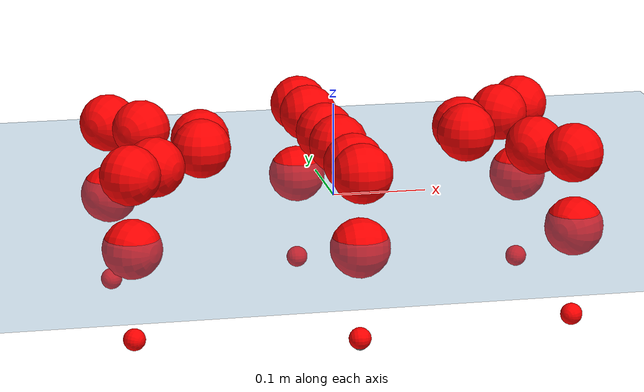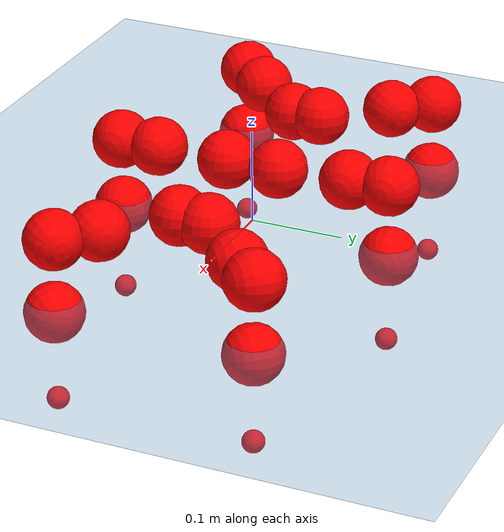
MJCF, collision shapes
<mujoco model="Golem">
  <compiler angle="radian" assetdir="assets" balanceinertia="true" inertiafromgeom="false"/>

  <option timestep="0.005" density="1.2" viscosity="2e-05"/>

  <size nkey="1"/>

  <visual>
    <quality shadowsize="8192"/>
    <map shadowclip="0.5"/>
  </visual>

  <default>
    <default class="/">
      <joint armature="0.01" damping="0.01" frictionloss="0.01"/>
      <geom contype="0" conaffinity="0" group="1" solref="-1000 -80"/>
      <site size="0.01 0.005 0.005" group="5"/>
      <general forcelimited="true" biastype="affine" gainprm="25" biasprm="0 -25 -0.5"/>
      <default class="visual">
        <geom type="mesh" group="2"/>
      </default>
      <default class="collision">
        <geom group="3"/>
      </default>
      <default class="foot">
        <geom size="0.01 0 0" condim="6" group="4" priority="1" solimp="0.015 1 0.01"/>
      </default>
      <default class="reward_collision_sphere">
        <geom group="5" rgba="1 0 0 1"/>
      </default>
    </default>
  </default>

  <asset>
    <texture type="skybox" colorspace="auto" name="//unnamed_texture_0" builtin="gradient" rgb1="0.95 0.95 0.95" rgb2="0.95 0.95 0.95" width="100" height="600"/>
    <texture type="2d" colorspace="auto" name="texplane" builtin="checker" rgb1="0.345 0.575 0.748" rgb2="0.345 0.575 0.748" markrgb="1 1 1" width="512" height="512"/>
    <material name="MatPlane" class="/" texture="texplane" texuniform="true" texrepeat="2 2" specular="0.9"/>
    <mesh name="body" class="/" file="body.stl" scale="0.001 0.001 0.001"/>
    <mesh name="coxa" class="/" file="coxa.stl" scale="0.001 0.001 0.001"/>
    <mesh name="femur" class="/" file="femur.stl" scale="0.001 0.001 0.001"/>
    <mesh name="tibia" class="/" file="tibia.stl" scale="0.001 0.001 0.001"/>
    <mesh name="tarsus" class="/" file="tarsus.stl" scale="0.001 0.001 0.001"/>
  </asset>

  <worldbody>
    <geom name="floor" class="/" size="100 100 0.125" type="plane" group="0" material="MatPlane"/>
    <light name="toplight_shadow" class="/" pos="0 0 5" dir="0.0990148 0.0990148 -0.990148" type="directional" ambient="0.04 0.04 0.04" diffuse="0.55 0.55 0.55" specular="0.12 0.12 0.12"/>
    <light name="toplight_fill" class="/" pos="0 0 5" dir="0.0990148 0.0990148 -0.990148" type="directional" castshadow="false" ambient="0.04 0.04 0.04" diffuse="0.3 0.3 0.3" specular="0.08 0.08 0.08"/>
    <body name="trunk" pos="5.4585e-05 -0.000109373 -0.000953869" quat="0.999999 -0.0012101 -0.000312 2.6755e-05">
      <inertial pos="-0.000761549 -0.000651252 -0.00326022" quat="1 -0.000582958 -0.000215526 0.000417163" mass="1.76677" diaginertia="0.00586232 0.000118101 0.0102443"/>
      <joint name="//unnamed_joint_0" type="free"/>
      <geom name="//unnamed_geom_1" class="/" pos="0 0 0.0644132" quat="1 0 0 0" type="mesh" rgba="0.9 0.9 0.9 1" mesh="body"/>
      <site name="imu" class="/" pos="0.128942 -0.00166897 0.0989723" size="0.00772839"/>
      <camera name="track" class="/" pos="0 -0.824618 0" quat="0.707107 0.707107 0 0" mode="trackcom"/>
      <camera name="ego_camera" class="/" pos="0.116968 0 0.100646" quat="-0.5 -0.5 0.5 0.5"/>
      <body name="coxa_RR" pos="-0.161466 -0.033475 0.0637441" quat="0.382457 0.000985021 0.000767521 -0.923972">
        <inertial pos="0.000247238 -4.58863e-05 0.00212773" quat="0.999992 0.00218502 0.00312357 0.00101529" mass="0.0951871" diaginertia="0.00601024 0.000121597 0.0105014"/>
        <joint name="coxa_joint_RR" class="/" pos="0 0 0" axis="0.00442917 -0.00317918 -0.999985" range="-3.16989 3.09304" armature="0.00769285" damping="0.00255973" frictionloss="0.00788705"/>
        <geom name="//unnamed_geom_2" class="/" type="mesh" rgba="0.2 0.2 0.2 1" mesh="coxa"/>
        <geom name="//unnamed_geom_3" class="reward_collision_sphere" size="0.0309136" pos="-0.0269926 0 0"/>
        <body name="femur_RR" pos="0.0552204 0.00197389 -0.000593934" quat="0.500275 -0.499878 0.500088 0.499758">
          <inertial pos="-0.000361333 -0.000365785 0.00103089" quat="0.999997 -0.00136906 -0.000913208 -0.00202215" mass="0.092881" diaginertia="0.00587107 0.000119114 0.0104547"/>
          <joint name="femur_joint_RR" class="/" pos="0 0 0" axis="0.000228506 6.90757e-06 -1" range="-3.09497 3.14552" armature="0.00693098" damping="0" frictionloss="0.00812488"/>
          <geom name="//unnamed_geom_4" class="/" type="mesh" rgba="0.9 0.9 0.9 1" mesh="femur"/>
          <geom name="//unnamed_geom_5" class="reward_collision_sphere" size="0.0309136"/>
          <body name="tibia_RR" pos="-0.00191565 -0.0429906 0.00188591" quat="-0.000470632 1 -5.44526e-05 -0.000287757">
            <inertial pos="0.00168902 0.000809289 0.000351437" quat="0.999997 0.000714633 -0.000374062 -0.00230949" mass="0.0941971" diaginertia="0.00596363 0.000119074 0.0100717"/>
            <joint name="tibia_joint_RR" class="/" pos="0 0 0" axis="0.00977616 0.00465538 0.999941" range="-3.09299 3.14649" armature="0.00710502" damping="0" frictionloss="0.00786221"/>
            <geom name="//unnamed_geom_6" class="/" type="mesh" rgba="0.2 0.2 0.2 1" mesh="tibia"/>
            <geom name="//unnamed_geom_7" class="reward_collision_sphere" size="0.0309136"/>
            <body name="tarsus_RR" pos="0.0767351 0.00100762 -0.0015425" quat="1 -0.000242699 -0.000235512 -0.000129071">
              <inertial pos="0.0543251 0.000921903 -0.000909746" quat="0.499147 0.499959 0.50055 0.500343" mass="0.0925901" diaginertia="0.00589272 0.000118822 0.0104132"/>
              <joint name="tarsus_joint_RR" class="/" pos="0 0 0" axis="-0.00608657 -0.00321446 0.999976" range="-3.13164 3.14318" armature="0.00819658" damping="0" frictionloss="0.00749821"/>
              <geom name="//unnamed_geom_8" class="/" type="mesh" rgba="0.9 0.9 0.9 1" mesh="tarsus"/>
              <geom name="foot_1" class="foot" size="0.00735813" pos="0.100772 0 0" quat="0 -0.707107 0 0.707107"/>
              <geom name="//unnamed_geom_10" class="reward_collision_sphere" size="0.0309136"/>
              <geom name="//unnamed_geom_11" class="reward_collision_sphere" size="0.0115926" pos="0.0967233 0 0"/>
              <site name="foot_1" class="foot" pos="0.100772 0 0" quat="0 -0.707107 0 0.707107" size="0.00772839"/>
            </body>
          </body>
        </body>
      </body>
      <body name="coxa_RM" pos="-0.000151377 -0.0554614 0.0649599" quat="0.707627 -0.000816003 -1.69111e-05 -0.706586">
        <inertial pos="0.000200638 -0.00194191 0.000637702" quat="0.999997 -5.16025e-05 0.00204837 -0.00133895" mass="0.091145" diaginertia="0.00579761 0.000119942 0.0104397"/>
        <joint name="coxa_joint_RM" class="/" pos="0 0 0" axis="0.00939646 0.00687069 -0.999932" range="-3.13967 3.17349" armature="0.0086639" damping="0" frictionloss="0.00728349"/>
        <geom name="//unnamed_geom_12" class="/" type="mesh" rgba="0.2 0.2 0.2 1" mesh="coxa"/>
        <geom name="//unnamed_geom_13" class="reward_collision_sphere" size="0.0309136" pos="-0.0269926 0 0"/>
        <body name="femur_RM" pos="0.050826 0.000183865 0.000257828" quat="0.499748 -0.50005 0.500004 0.500197">
          <inertial pos="0.000661437 -0.00113426 0.000134032" quat="0.999989 0.00411883 -0.00214645 -0.000867905" mass="0.0932709" diaginertia="0.00581627 0.00012206 0.0105726"/>
          <joint name="femur_joint_RM" class="/" pos="0 0 0" axis="0.00249017 -0.00275924 -0.999993" range="-3.1359 3.13101" armature="0.00748025" damping="0.00480007" frictionloss="0.0080843"/>
          <geom name="//unnamed_geom_14" class="/" type="mesh" rgba="0.9 0.9 0.9 1" mesh="femur"/>
          <geom name="//unnamed_geom_15" class="reward_collision_sphere" size="0.0309136"/>
          <body name="tibia_RM" pos="-0.000568596 -0.0426188 0.000124666" quat="-2.2261e-05 1 -6.35243e-05 -1.45262e-05">
            <inertial pos="-0.000651471 -0.00159208 -0.00205622" quat="0.999955 -0.0015676 0.00762192 -0.00549938" mass="0.0919268" diaginertia="0.00607346 0.000120279 0.0105873"/>
            <joint name="tibia_joint_RM" class="/" pos="0 0 0" axis="-0.00051017 -0.000110491 1" range="-3.15168 3.14998" armature="0.00851019" damping="0.00106138" frictionloss="0.00867669"/>
            <geom name="//unnamed_geom_16" class="/" type="mesh" rgba="0.2 0.2 0.2 1" mesh="tibia"/>
            <geom name="//unnamed_geom_17" class="reward_collision_sphere" size="0.0309136"/>
            <body name="tarsus_RM" pos="0.0776028 0.000393858 0.00205127" quat="1 -5.3063e-05 -1.00253e-06 4.56871e-05">
              <inertial pos="0.0549991 0.00132792 0.000189031" quat="0.497551 0.501508 0.497762 0.503156" mass="0.0914454" diaginertia="0.00587494 0.000118179 0.0102177"/>
              <joint name="tarsus_joint_RM" class="/" pos="0 0 0" axis="-4.48722e-05 -0.000810801 1" range="-3.09267 3.13402" armature="0.0087267" damping="1.74981e-05" frictionloss="0.00793297"/>
              <geom name="//unnamed_geom_18" class="/" type="mesh" rgba="0.9 0.9 0.9 1" mesh="tarsus"/>
              <geom name="foot_2" class="foot" size="0.00842433" pos="0.100772 0 0" quat="0 -0.707107 0 0.707107"/>
              <geom name="//unnamed_geom_20" class="reward_collision_sphere" size="0.0309136"/>
              <geom name="//unnamed_geom_21" class="reward_collision_sphere" size="0.0115926" pos="0.0967233 0 0"/>
              <site name="foot_2" class="foot" pos="0.100772 0 0" quat="0 -0.707107 0 0.707107" size="0.00772839"/>
            </body>
          </body>
        </body>
      </body>
      <body name="coxa_RF" pos="0.159414 -0.034461 0.0663766" quat="0.92384 0.000200549 0.000559794 -0.382779">
        <inertial pos="-0.00100594 -0.00270086 0.00109407" quat="0.999983 0.0037157 -0.00299509 0.00323277" mass="0.0933793" diaginertia="0.00596892 0.000117879 0.0103206"/>
        <joint name="coxa_joint_RF" class="/" pos="0 0 0" axis="0.0030145 0.00099505 -0.999995" range="-3.12674 3.18332" armature="0.00752319" damping="0" frictionloss="0.00772309"/>
        <geom name="//unnamed_geom_22" class="/" type="mesh" rgba="0.2 0.2 0.2 1" mesh="coxa"/>
        <geom name="//unnamed_geom_23" class="reward_collision_sphere" size="0.0309136" pos="-0.0269926 0 0"/>
        <body name="femur_RF" pos="0.0562082 0.000268362 -0.00163929" quat="0.500376 -0.499087 0.500172 0.500364">
          <inertial pos="0.00066846 -0.0015983 0.00230525" quat="0.999932 0.00190747 -0.0110718 0.00313607" mass="0.0938103" diaginertia="0.00587404 0.000116104 0.0104736"/>
          <joint name="femur_joint_RF" class="/" pos="0 0 0" axis="0.00132317 0.00400868 -0.999991" range="-3.11889 3.13814" armature="0.00761497" damping="0" frictionloss="0.0068829"/>
          <geom name="//unnamed_geom_24" class="/" type="mesh" rgba="0.9 0.9 0.9 1" mesh="femur"/>
          <geom name="//unnamed_geom_25" class="reward_collision_sphere" size="0.0309136"/>
          <body name="tibia_RF" pos="0.00109749 -0.0463163 0.000414244" quat="-6.5734e-05 1 0.000597277 0.000409561">
            <inertial pos="-0.000230019 0.000545469 0.000805114" quat="0.999989 -0.000175801 -0.00421418 0.00185881" mass="0.0927084" diaginertia="0.0059273 0.000120714 0.0105634"/>
            <joint name="tibia_joint_RF" class="/" pos="0 0 0" axis="0.00843753 -0.00151029 0.999963" range="-3.12099 3.14207" armature="0.00805816" damping="0.00524919" frictionloss="0.00772108"/>
            <geom name="//unnamed_geom_26" class="/" type="mesh" rgba="0.2 0.2 0.2 1" mesh="tibia"/>
            <geom name="//unnamed_geom_27" class="reward_collision_sphere" size="0.0309136"/>
            <body name="tarsus_RF" pos="0.0788369 0.00206115 -0.000382361" quat="0.999999 0.000226498 -0.000336522 -0.00106213">
              <inertial pos="0.051644 -0.000438711 0.00247261" quat="0.501826 0.495732 0.504225 0.498174" mass="0.0894455" diaginertia="0.00588656 0.000116134 0.010101"/>
              <joint name="tarsus_joint_RF" class="/" pos="0 0 0" axis="-0.0137616 0.00263123 0.999902" range="-3.09261 3.11758" armature="0.00769771" damping="0" frictionloss="0.00807819"/>
              <geom name="//unnamed_geom_28" class="/" type="mesh" rgba="0.9 0.9 0.9 1" mesh="tarsus"/>
              <geom name="foot_3" class="foot" size="0.00755905" pos="0.100772 0 0" quat="0 -0.707107 0 0.707107"/>
              <geom name="//unnamed_geom_30" class="reward_collision_sphere" size="0.0309136"/>
              <geom name="//unnamed_geom_31" class="reward_collision_sphere" size="0.0115926" pos="0.0967233 0 0"/>
              <site name="foot_3" class="foot" pos="0.100772 0 0" quat="0 -0.707107 0 0.707107" size="0.00772839"/>
            </body>
          </body>
        </body>
      </body>
      <body name="coxa_LR" pos="-0.158021 0.0371328 0.0657037" quat="0.381651 0.000106021 0.000132602 0.924306">
        <inertial pos="0.00249273 0.000262617 0.000486773" quat="0.999973 -0.00337529 -0.00628953 -0.00180686" mass="0.0909731" diaginertia="0.00584938 0.000117813 0.0102093"/>
        <joint name="coxa_joint_LR" class="/" pos="0 0 0" axis="-0.00963472 0.000769323 -0.999953" range="-3.12262 3.14704" armature="0.00799575" damping="0.00898086" frictionloss="0.00776892"/>
        <geom name="//unnamed_geom_32" class="/" type="mesh" rgba="0.2 0.2 0.2 1" mesh="coxa"/>
        <geom name="//unnamed_geom_33" class="reward_collision_sphere" size="0.0309136" pos="-0.0269926 0 0"/>
        <body name="femur_LR" pos="0.0542359 -0.00423455 -0.0023018" quat="0.500366 -0.498947 0.500233 0.500453">
          <inertial pos="-0.00121896 -0.000146024 0.000744835" quat="1 0.000114821 -0.000303033 8.63897e-05" mass="0.0922127" diaginertia="0.00586669 0.000118193 0.0102284"/>
          <joint name="femur_joint_LR" class="/" pos="0 0 0" axis="0.000266659 0.00035455 1" range="-3.14398 3.18913" armature="0.00758386" damping="0.00176568" frictionloss="0.00867913"/>
          <geom name="//unnamed_geom_34" class="/" type="mesh" rgba="0.9 0.9 0.9 1" mesh="femur"/>
          <geom name="//unnamed_geom_35" class="reward_collision_sphere" size="0.0309136"/>
          <body name="tibia_LR" pos="0.000835147 -0.0470652 -0.00342307" quat="-7.08906e-06 1 -1.31314e-05 5.92074e-06">
            <inertial pos="-0.000921131 -0.000970068 0.0011278" quat="0.999987 -0.000414882 -0.00382827 -0.00332475" mass="0.0930171" diaginertia="0.00594734 0.000121756 0.0103955"/>
            <joint name="tibia_joint_LR" class="/" pos="0 0 0" axis="-0.000105117 0.00015273 -1" range="-3.15972 3.098" armature="0.00685067" damping="0" frictionloss="0.00773925"/>
            <geom name="//unnamed_geom_36" class="/" type="mesh" rgba="0.2 0.2 0.2 1" mesh="tibia"/>
            <geom name="//unnamed_geom_37" class="reward_collision_sphere" size="0.0309136"/>
            <body name="tarsus_LR" pos="0.0796924 0.000813339 -0.000271397" quat="1 0.000479011 -0.000239941 0.00027707">
              <inertial pos="0.0554137 0.000457809 0.000686676" quat="0.499535 0.498596 0.500586 0.50128" mass="0.0911955" diaginertia="0.00584756 0.000119121 0.0102406"/>
              <joint name="tarsus_joint_LR" class="/" pos="0 0 0" axis="0.000309187 0.00135167 -0.999999" range="-3.09399 3.13499" armature="0.00779913" damping="0" frictionloss="0.00764815"/>
              <geom name="//unnamed_geom_38" class="/" type="mesh" rgba="0.9 0.9 0.9 1" mesh="tarsus"/>
              <geom name="foot_4" class="foot" size="0.00714015" pos="0.100772 0 0" quat="0.707107 0 -0.707107 0"/>
              <geom name="//unnamed_geom_40" class="reward_collision_sphere" size="0.0309136"/>
              <geom name="//unnamed_geom_41" class="reward_collision_sphere" size="0.0115926" pos="0.0967233 0 0"/>
              <site name="foot_4" class="foot" pos="0.100772 0 0" quat="0.707107 0 -0.707107 0" size="0.00772839"/>
            </body>
          </body>
        </body>
      </body>
      <body name="coxa_LM" pos="-0.00379549 0.0544788 0.0635243" quat="0.706351 0.000771002 0.000636689 0.707861">
        <inertial pos="0.00103907 0.000183537 0.0014407" quat="0.999999 -0.00049147 -0.000671626 0.0006915" mass="0.096355" diaginertia="0.00626807 0.000122711 0.0105887"/>
        <joint name="coxa_joint_LM" class="/" pos="0 0 0" axis="0.00179863 -0.00189155 -0.999997" stiffness="0.00504893" range="-3.17279 3.15243" armature="0.00734313" damping="0.00810798" frictionloss="0.00832452"/>
        <geom name="//unnamed_geom_42" class="/" type="mesh" rgba="0.2 0.2 0.2 1" mesh="coxa"/>
        <geom name="//unnamed_geom_43" class="reward_collision_sphere" size="0.0309136" pos="-0.0269926 0 0"/>
        <body name="femur_LM" pos="0.0496228 0.00314284 0.00112338" quat="0.50011 -0.499885 0.499905 0.500101">
          <inertial pos="0.000226166 -0.00110991 0.000398925" quat="0.999998 5.12291e-05 0.000361264 0.00193071" mass="0.0882031" diaginertia="0.00579317 0.000115958 0.0100712"/>
          <joint name="femur_joint_LM" class="/" pos="0 0 0" axis="0.000701161 -0.00274266 0.999996" range="-3.15854 3.13087" armature="0.00775329" damping="0" frictionloss="0.00797818"/>
          <geom name="//unnamed_geom_44" class="/" type="mesh" rgba="0.9 0.9 0.9 1" mesh="femur"/>
          <geom name="//unnamed_geom_45" class="reward_collision_sphere" size="0.0309136"/>
          <body name="tibia_LM" pos="-3.12705e-05 -0.0429895 0.00263766" quat="-1.10534e-06 1 -5.45801e-06 -1.20784e-05">
            <inertial pos="-0.00235783 0.000748315 -1.02325e-05" quat="1 7.74976e-05 -1.17115e-05 -8.39273e-05" mass="0.0932499" diaginertia="0.00571823 0.000118326 0.0102832"/>
            <joint name="tibia_joint_LM" class="/" pos="0 0 0" axis="-0.00192172 0.00219403 -0.999996" range="-3.1147 3.13723" armature="0.00784705" damping="0.00443212" frictionloss="0.00765574"/>
            <geom name="//unnamed_geom_46" class="/" type="mesh" rgba="0.2 0.2 0.2 1" mesh="tibia"/>
            <geom name="//unnamed_geom_47" class="reward_collision_sphere" size="0.0309136"/>
            <body name="tarsus_LM" pos="0.0801758 0.000240429 -0.00204842" quat="1 6.74486e-05 0.000296684 -0.000179232">
              <inertial pos="0.0540285 0.000807988 -0.000141932" quat="0.500256 0.499323 0.500687 0.499733" mass="0.0911338" diaginertia="0.00589369 0.00011843 0.0104905"/>
              <joint name="tarsus_joint_LM" class="/" pos="0 0 0" axis="0.00557834 -0.00109597 -0.999984" range="-3.15794 3.11502" armature="0.00768432" damping="0.00998605" frictionloss="0.00708213"/>
              <geom name="//unnamed_geom_48" class="/" type="mesh" rgba="0.9 0.9 0.9 1" mesh="tarsus"/>
              <geom name="foot_5" class="foot" size="0.00764405" pos="0.100772 0 0" quat="0.707107 0 -0.707107 0"/>
              <geom name="//unnamed_geom_50" class="reward_collision_sphere" size="0.0309136"/>
              <geom name="//unnamed_geom_51" class="reward_collision_sphere" size="0.0115926" pos="0.0967233 0 0"/>
              <site name="foot_5" class="foot" pos="0.100772 0 0" quat="0.707107 0 -0.707107 0" size="0.00772839"/>
            </body>
          </body>
        </body>
      </body>
      <body name="coxa_LF" pos="0.161661 0.0363677 0.0653033" quat="0.923893 -3.3638e-05 -8.62546e-05 0.38265">
        <inertial pos="-4.53516e-05 -0.000983014 -5.02873e-05" quat="0.999988 0.0037877 -0.00231028 0.00185716" mass="0.0908172" diaginertia="0.00578721 0.000114249 0.0101302"/>
        <joint name="coxa_joint_LF" class="/" pos="0 0 0" axis="-0.00703821 -0.00138575 -0.999974" range="-3.15803 3.15602" armature="0.00763386" damping="0" frictionloss="0.00769711"/>
        <geom name="//unnamed_geom_52" class="/" type="mesh" rgba="0.2 0.2 0.2 1" mesh="coxa"/>
        <geom name="//unnamed_geom_53" class="reward_collision_sphere" size="0.0309136" pos="-0.0269926 0 0"/>
        <body name="femur_LF" pos="0.0519672 -0.000215682 -0.00223402" quat="0.50014 -0.5 0.500028 0.499832">
          <inertial pos="-0.000375501 0.000806643 6.27029e-05" quat="0.999923 0.0117346 -0.00386128 0.00103921" mass="0.092588" diaginertia="0.0059972 0.000116356 0.0103087"/>
          <joint name="femur_joint_LF" class="/" pos="0 0 0" axis="-0.00154339 0.00573402 0.999982" stiffness="0.000461327" range="-3.12874 3.14698" armature="0.00754433" damping="0" frictionloss="0.00675754"/>
          <geom name="//unnamed_geom_54" class="/" type="mesh" rgba="0.9 0.9 0.9 1" mesh="femur"/>
          <geom name="//unnamed_geom_55" class="reward_collision_sphere" size="0.0309136"/>
          <body name="tibia_LF" pos="-0.000492859 -0.0441676 0.00024212" quat="0.000297939 1 2.71408e-05 4.56757e-05">
            <inertial pos="-0.000443037 -0.000506631 0.00059588" quat="1 0.000749437 -0.000150518 -0.000386882" mass="0.093268" diaginertia="0.0059812 0.000119514 0.0103399"/>
            <joint name="tibia_joint_LF" class="/" pos="0 0 0" axis="0.00303631 0.00468712 -0.999984" range="-3.18841 3.14927" armature="0.00770062" damping="0.00390955" frictionloss="0.00740313"/>
            <geom name="//unnamed_geom_56" class="/" type="mesh" rgba="0.2 0.2 0.2 1" mesh="tibia"/>
            <geom name="//unnamed_geom_57" class="reward_collision_sphere" size="0.0309136"/>
            <body name="tarsus_LF" pos="0.0796797 -0.000352815 0.000507996" quat="1 2.14091e-05 2.29413e-05 -9.95645e-05">
              <inertial pos="0.0556043 0.00043038 0.00264783" quat="0.49999 0.500045 0.49998 0.499985" mass="0.0940122" diaginertia="0.00587957 0.000120297 0.0104644"/>
              <joint name="tarsus_joint_LF" class="/" pos="0 0 0" axis="-0.00881456 0.00189114 -0.999959" stiffness="0.0300669" range="-3.13699 3.1428" armature="0.0077461" damping="0.0268974" frictionloss="0.00771305"/>
              <geom name="//unnamed_geom_58" class="/" type="mesh" rgba="0.9 0.9 0.9 1" mesh="tarsus"/>
              <geom name="foot_6" class="foot" size="0.00782054" pos="0.100772 0 0" quat="0.707107 0 -0.707107 0"/>
              <geom name="//unnamed_geom_60" class="reward_collision_sphere" size="0.0309136"/>
              <geom name="//unnamed_geom_61" class="reward_collision_sphere" size="0.0115926" pos="0.0967233 0 0"/>
              <site name="foot_6" class="foot" pos="0.100772 0 0" quat="0.707107 0 -0.707107 0" size="0.00772839"/>
            </body>
          </body>
        </body>
      </body>
    </body>
  </worldbody>

  <contact>
    <pair class="/" geom1="floor" geom2="foot_1" name="//unnamed_contact_0"/>
    <pair class="/" geom1="floor" geom2="foot_2" name="//unnamed_contact_1"/>
    <pair class="/" geom1="floor" geom2="foot_3" name="//unnamed_contact_2"/>
    <pair class="/" geom1="floor" geom2="foot_4" name="//unnamed_contact_3"/>
    <pair class="/" geom1="floor" geom2="foot_5" name="//unnamed_contact_4"/>
    <pair class="/" geom1="floor" geom2="foot_6" name="//unnamed_contact_5"/>
  </contact>

  <actuator>
    <general name="coxa_joint_RR" class="/" joint="coxa_joint_RR" forcerange="-5.8898 5.8898" gainprm="17.5973" biasprm="0 -17.5973 -0.37811"/>
    <general name="femur_joint_RR" class="/" joint="femur_joint_RR" forcerange="-5.51666 5.51666" gainprm="17.5973" biasprm="0 -17.5973 -0.37811"/>
    <general name="tibia_joint_RR" class="/" joint="tibia_joint_RR" forcerange="-5.84582 5.84582" gainprm="17.5973" biasprm="0 -17.5973 -0.37811"/>
    <general name="tarsus_joint_RR" class="/" joint="tarsus_joint_RR" forcerange="-5.50529 5.50529" gainprm="17.5973" biasprm="0 -17.5973 -0.37811"/>
    <general name="coxa_joint_RM" class="/" joint="coxa_joint_RM" forcerange="-5.90522 5.90522" gainprm="17.5973" biasprm="0 -17.5973 -0.37811"/>
    <general name="femur_joint_RM" class="/" joint="femur_joint_RM" forcerange="-6.01957 6.01957" gainprm="17.5973" biasprm="0 -17.5973 -0.37811"/>
    <general name="tibia_joint_RM" class="/" joint="tibia_joint_RM" forcerange="-5.74901 5.74901" gainprm="17.5973" biasprm="0 -17.5973 -0.37811"/>
    <general name="tarsus_joint_RM" class="/" joint="tarsus_joint_RM" forcerange="-6.16032 6.16032" gainprm="17.5973" biasprm="0 -17.5973 -0.37811"/>
    <general name="coxa_joint_RF" class="/" joint="coxa_joint_RF" forcerange="-6.0997 6.0997" gainprm="17.5973" biasprm="0 -17.5973 -0.37811"/>
    <general name="femur_joint_RF" class="/" joint="femur_joint_RF" forcerange="-5.18179 5.18179" gainprm="17.5973" biasprm="0 -17.5973 -0.37811"/>
    <general name="tibia_joint_RF" class="/" joint="tibia_joint_RF" forcerange="-5.78708 5.78708" gainprm="17.5973" biasprm="0 -17.5973 -0.37811"/>
    <general name="tarsus_joint_RF" class="/" joint="tarsus_joint_RF" forcerange="-5.75816 5.75816" gainprm="17.5973" biasprm="0 -17.5973 -0.37811"/>
    <general name="coxa_joint_LR" class="/" joint="coxa_joint_LR" forcerange="-5.59421 5.59421" gainprm="17.5973" biasprm="0 -17.5973 -0.37811"/>
    <general name="femur_joint_LR" class="/" joint="femur_joint_LR" forcerange="-5.43658 5.43658" gainprm="17.5973" biasprm="0 -17.5973 -0.37811"/>
    <general name="tibia_joint_LR" class="/" joint="tibia_joint_LR" forcerange="-5.76913 5.76913" gainprm="17.5973" biasprm="0 -17.5973 -0.37811"/>
    <general name="tarsus_joint_LR" class="/" joint="tarsus_joint_LR" forcerange="-5.64099 5.64099" gainprm="17.5973" biasprm="0 -17.5973 -0.37811"/>
    <general name="coxa_joint_LM" class="/" joint="coxa_joint_LM" forcerange="-5.62971 5.62971" gainprm="17.5973" biasprm="0 -17.5973 -0.37811"/>
    <general name="femur_joint_LM" class="/" joint="femur_joint_LM" forcerange="-5.62576 5.62576" gainprm="17.5973" biasprm="0 -17.5973 -0.37811"/>
    <general name="tibia_joint_LM" class="/" joint="tibia_joint_LM" forcerange="-5.12766 5.12766" gainprm="17.5973" biasprm="0 -17.5973 -0.37811"/>
    <general name="tarsus_joint_LM" class="/" joint="tarsus_joint_LM" forcerange="-5.65229 5.65229" gainprm="17.5973" biasprm="0 -17.5973 -0.37811"/>
    <general name="coxa_joint_LF" class="/" joint="coxa_joint_LF" forcerange="-6.02697 6.02697" gainprm="17.5973" biasprm="0 -17.5973 -0.37811"/>
    <general name="femur_joint_LF" class="/" joint="femur_joint_LF" forcerange="-6.05348 6.05348" gainprm="17.5973" biasprm="0 -17.5973 -0.37811"/>
    <general name="tibia_joint_LF" class="/" joint="tibia_joint_LF" forcerange="-5.67276 5.67276" gainprm="17.5973" biasprm="0 -17.5973 -0.37811"/>
    <general name="tarsus_joint_LF" class="/" joint="tarsus_joint_LF" forcerange="-5.85998 5.85998" gainprm="17.5973" biasprm="0 -17.5973 -0.37811"/>
  </actuator>

  <sensor>
    <gyro site="imu" name="imu_angular_velocity"/>
    <velocimeter site="imu" name="imu_linear_velocity"/>
    <framelinvel objtype="site" objname="foot_1" name="foot_1_global_linear_velocity"/>
    <framelinvel objtype="site" objname="foot_2" name="foot_2_global_linear_velocity"/>
    <framelinvel objtype="site" objname="foot_3" name="foot_3_global_linear_velocity"/>
    <framelinvel objtype="site" objname="foot_4" name="foot_4_global_linear_velocity"/>
    <framelinvel objtype="site" objname="foot_5" name="foot_5_global_linear_velocity"/>
    <framelinvel objtype="site" objname="foot_6" name="foot_6_global_linear_velocity"/>
  </sensor>

  <keyframe>
    <key name="home" qpos="0 0 0.1457 1 0 0 0 0 0 0 0 0 0 0 0 0 0 0 0 0 0 0 0 0 0 0 0 0 0 0 0"/>
  </keyframe>
</mujoco>
